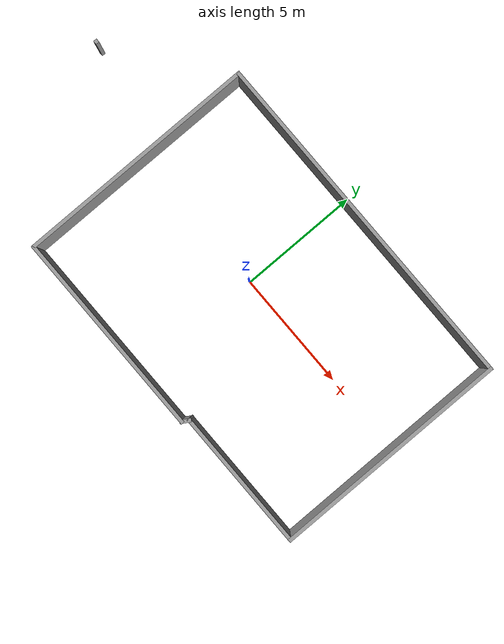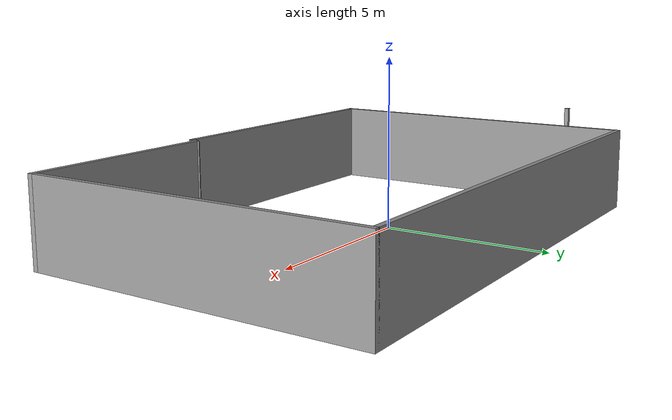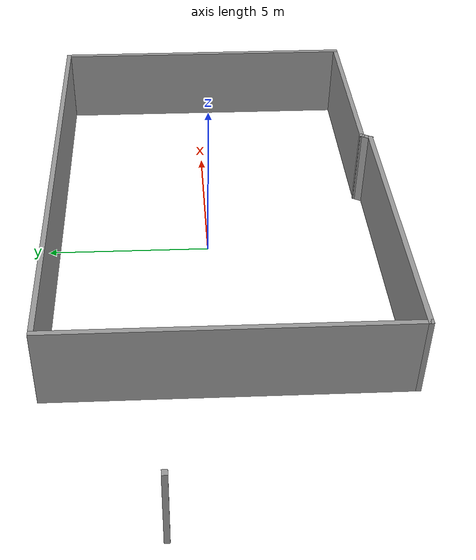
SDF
<?xml version='1.0'?>
<sdf version='1.7'>
  <model name='box5'>
    <pose>-1.08825 -0.334497 0 0 -0 0</pose>
    <link name='Wall_24'>
      <collision name='Wall_24_Collision'>
        <geometry>
          <box>
            <size>0.16 0.15 2.5</size>
          </box>
        </geometry>
        <pose>0 0 1.25 0 -0 0</pose>
      </collision>
      <visual name='Wall_24_Visual'>
        <pose>0 0 1.25 0 -0 0</pose>
        <geometry>
          <box>
            <size>0.16 0.15 2.5</size>
          </box>
        </geometry>
        <material>
          <script>
            <uri>file://media/materials/scripts/gazebo.material</uri>
            <name>Gazebo/Grey</name>
          </script>
          <ambient>0 0 0 1</ambient>
        </material>
        <meta>
          <layer>0</layer>
        </meta>
      </visual>
      <pose>-9.49546 1.75595 0 0 -0 0</pose>
    </link>
    <link name='Wall_25'>
      <collision name='Wall_25_Collision'>
        <geometry>
          <box>
            <size>8.75 0.15 2.5</size>
          </box>
        </geometry>
        <pose>0 0 1.25 0 -0 0</pose>
      </collision>
      <visual name='Wall_25_Visual'>
        <pose>0 0 1.25 0 -0 0</pose>
        <geometry>
          <box>
            <size>8.75 0.15 2.5</size>
          </box>
        </geometry>
        <material>
          <script>
            <uri>file://media/materials/scripts/gazebo.material</uri>
            <name>Gazebo/Grey</name>
          </script>
          <ambient>1 1 1 1</ambient>
        </material>
        <meta>
          <layer>0</layer>
        </meta>
      </visual>
      <pose>-0.799536 -5.03605 0 0 -0 3.14159</pose>
    </link>
    <link name='Wall_26'>
      <collision name='Wall_26_Collision'>
        <geometry>
          <box>
            <size>10.25 0.15 2.5</size>
          </box>
        </geometry>
        <pose>0 0 1.25 0 -0 0</pose>
      </collision>
      <visual name='Wall_26_Visual'>
        <pose>0 0 1.25 0 -0 0</pose>
        <geometry>
          <box>
            <size>10.25 0.15 2.5</size>
          </box>
        </geometry>
        <material>
          <script>
            <uri>file://media/materials/scripts/gazebo.material</uri>
            <name>Gazebo/Grey</name>
          </script>
          <ambient>1 1 1 1</ambient>
        </material>
        <meta>
          <layer>0</layer>
        </meta>
      </visual>
      <pose>-5.09954 0.013949 0 0 -0 1.5708</pose>
    </link>
    <link name='Wall_27'>
      <collision name='Wall_27_Collision'>
        <geometry>
          <box>
            <size>14.75 0.15 2.5</size>
          </box>
        </geometry>
        <pose>0 0 1.25 0 -0 0</pose>
      </collision>
      <visual name='Wall_27_Visual'>
        <pose>0 0 1.25 0 -0 0</pose>
        <geometry>
          <box>
            <size>14.75 0.15 2.5</size>
          </box>
        </geometry>
        <material>
          <script>
            <uri>file://media/materials/scripts/gazebo.material</uri>
            <name>Gazebo/Grey</name>
          </script>
          <ambient>1 1 1 1</ambient>
        </material>
        <meta>
          <layer>0</layer>
        </meta>
      </visual>
      <pose>2.20046 5.06395 0 0 -0 0</pose>
    </link>
    <link name='Wall_28'>
      <collision name='Wall_28_Collision'>
        <geometry>
          <box>
            <size>10 0.15 2.5</size>
          </box>
        </geometry>
        <pose>0 0 1.25 0 -0 0</pose>
      </collision>
      <visual name='Wall_28_Visual'>
        <pose>0 0 1.25 0 -0 0</pose>
        <geometry>
          <box>
            <size>10 0.15 2.5</size>
          </box>
        </geometry>
        <material>
          <script>
            <uri>file://media/materials/scripts/gazebo.material</uri>
            <name>Gazebo/Grey</name>
          </script>
          <ambient>1 1 1 1</ambient>
        </material>
        <meta>
          <layer>0</layer>
        </meta>
      </visual>
      <pose>9.50046 0.138949 0 0 -0 -1.5708</pose>
    </link>
    <link name='Wall_29'>
      <collision name='Wall_29_Collision'>
        <geometry>
          <box>
            <size>6 0.15 2.5</size>
          </box>
        </geometry>
        <pose>0 0 1.25 0 -0 0</pose>
      </collision>
      <visual name='Wall_29_Visual'>
        <pose>0 0 1.25 0 -0 0</pose>
        <geometry>
          <box>
            <size>6 0.15 2.5</size>
          </box>
        </geometry>
        <material>
          <script>
            <uri>file://media/materials/scripts/gazebo.material</uri>
            <name>Gazebo/Grey</name>
          </script>
          <ambient>1 1 1 1</ambient>
        </material>
        <meta>
          <layer>0</layer>
        </meta>
      </visual>
      <pose>6.57546 -4.78605 0 0 -0 3.14159</pose>
    </link>
    <link name='Wall_30'>
      <collision name='Wall_30_Collision'>
        <geometry>
          <box>
            <size>0.441548 0.15 2.5</size>
          </box>
        </geometry>
        <pose>0 0 1.25 0 -0 0</pose>
      </collision>
      <visual name='Wall_30_Visual'>
        <pose>0 0 1.25 0 -0 0</pose>
        <geometry>
          <box>
            <size>0.441548 0.15 2.5</size>
          </box>
        </geometry>
        <material>
          <script>
            <uri>file://media/materials/scripts/gazebo.material</uri>
            <name>Gazebo/Grey</name>
          </script>
          <ambient>1 1 1 1</ambient>
        </material>
        <meta>
          <layer>0</layer>
        </meta>
      </visual>
      <pose>3.57546 -4.91105 0 0 -0 -2.11122</pose>
    </link>
    <static>1</static>
  </model>
</sdf>
